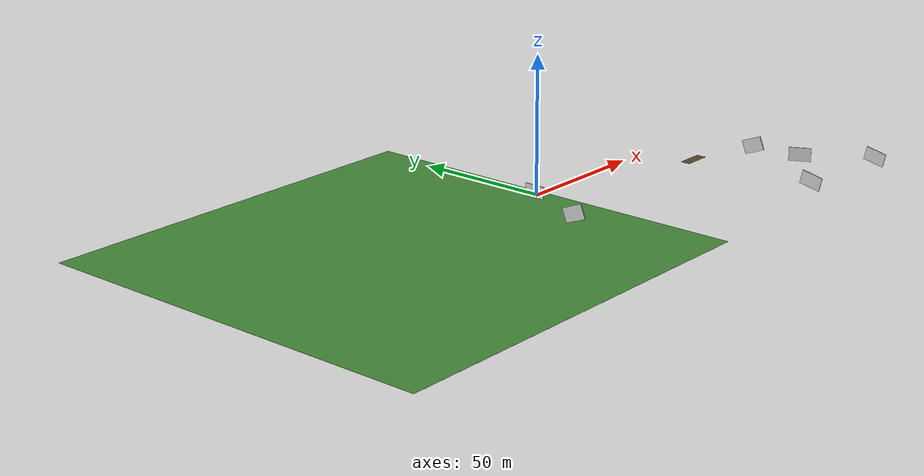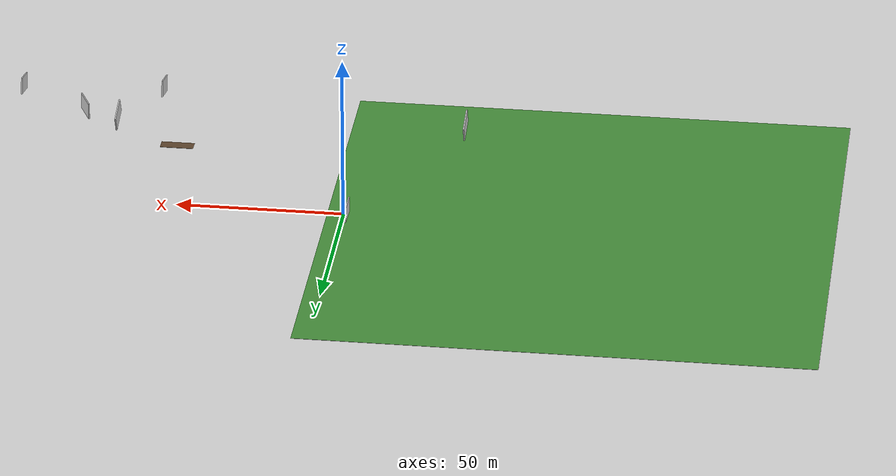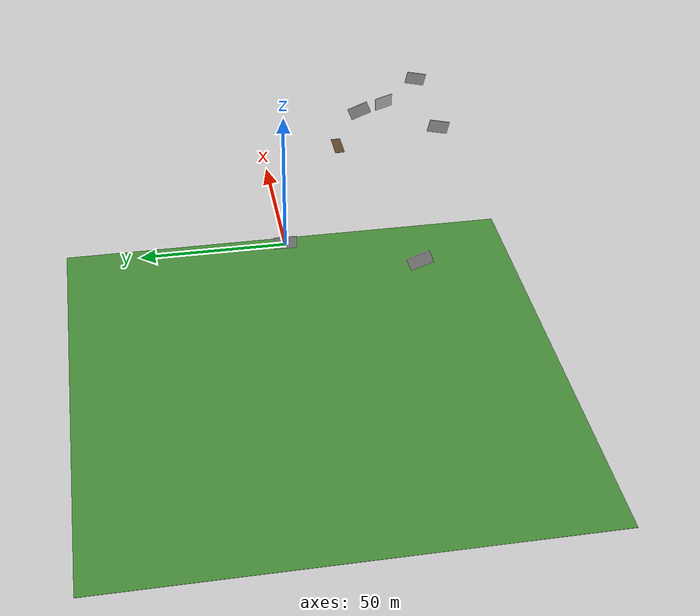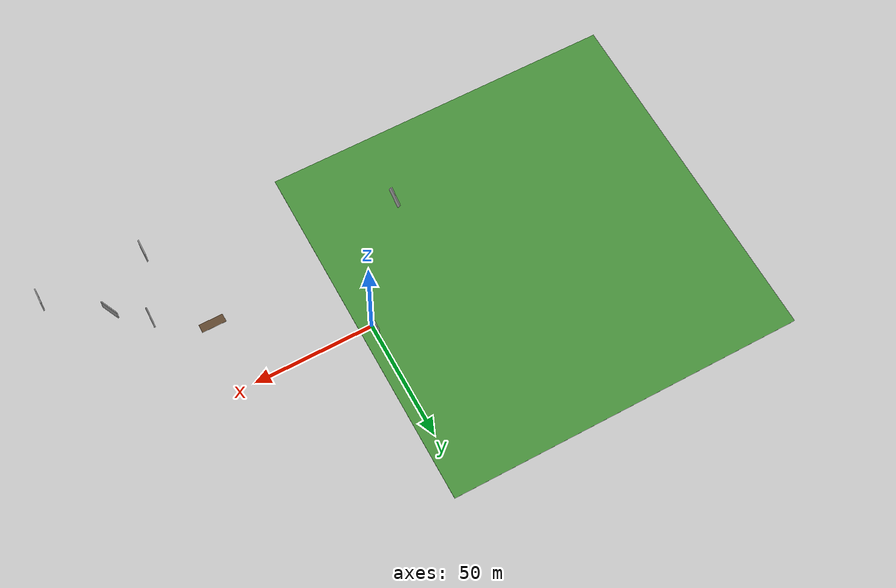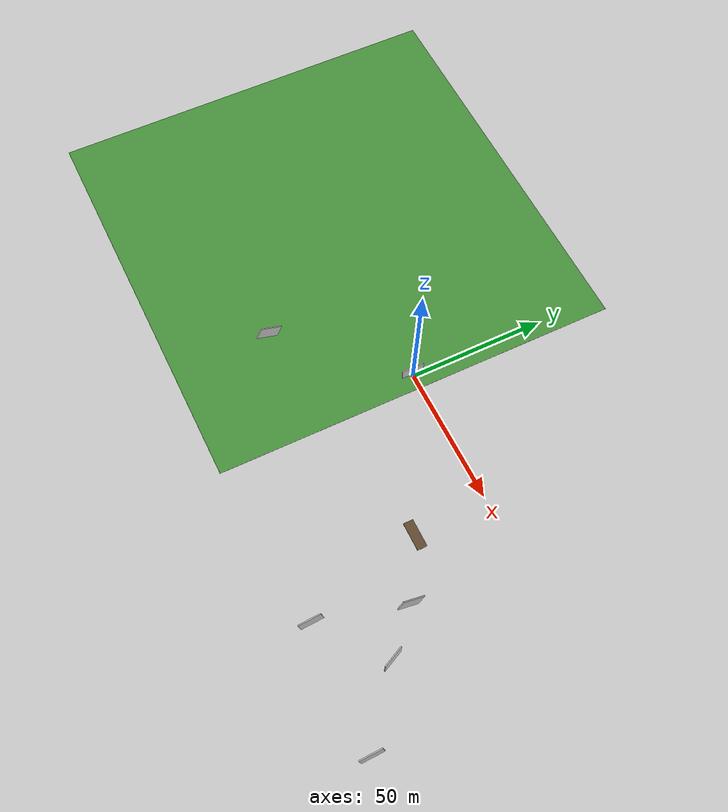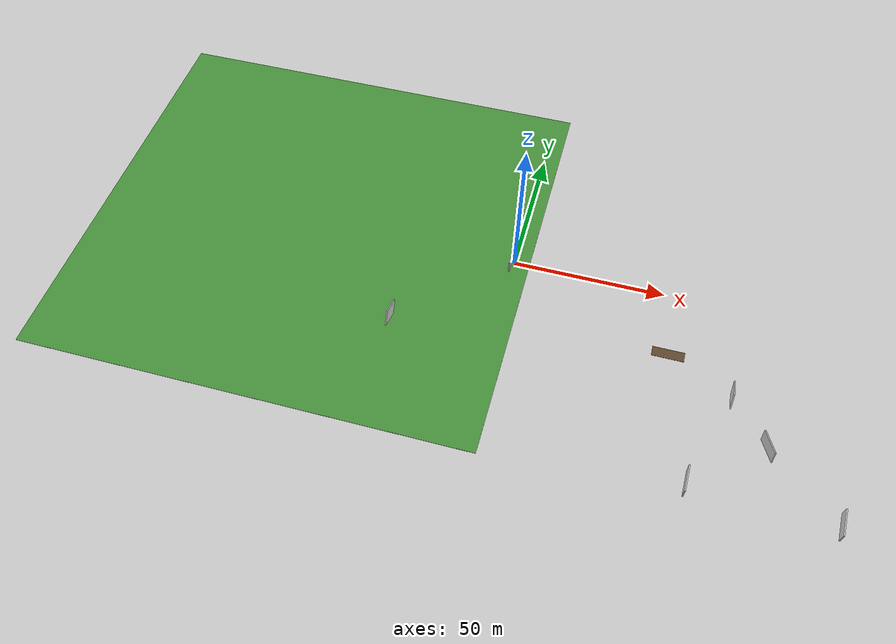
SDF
<sdf version="1.5">
 <world name="default">
  <physics name="mine_physics" default="true" type="ode">
   <max_step_size>0.0005</max_step_size>
   <real_time_update_rate>1000</real_time_update_rate>
   <real_time_factor>0.5</real_time_factor>
   <ode>
    <solver>
     <type>quick</type>
     <iters>100</iters>
     <sor>1.3</sor>
     <use_dynamic_moi_rescaling>true</use_dynamic_moi_rescaling>
    </solver>
    <constraints>
     <cfm>0.0</cfm>
     <erp>0.2</erp>
     <contact_max_correcting_vel>10.0</contact_max_correcting_vel>
     <contact_surface_layer>0.001</contact_surface_layer>
    </constraints>
   </ode>
  </physics>
  <gravity>0 0 -9.81</gravity>
  <scene><shadows>0</shadows></scene>
  <include><uri>model://sun_2</uri></include>
  <include><static>true</static><pose>-70 0 -0.6 0 0 0</pose><uri>model://grass_plane</uri></include>
  <include>
   <static>true</static>
   <pose>-1.1 0.18 -1 0 0 -1.586</pose>
   <name>w1</name>
   <uri>model://smaze_wall</uri>
  </include>
  <include>
   <static>true</static>
   <pose>-31.463 -41.132 8.711 0 -0.3784 -1.586</pose>
   <name>w2</name>
   <uri>model://smaze_wall</uri>
  </include>
  <include>
   <static>true</static>
   <pose>74.0 -40.724 5.897 0 -0.3784 -1.586</pose>
   <name>w3</name>
   <uri>model://smaze_wall</uri>
  </include>
  <include>
   <static>true</static>
   <pose>64.79 -69.038 1.147 0 0.2157 -1.586</pose>
   <name>w4</name>
   <uri>model://smaze_wall</uri>
  </include>
  <include>
   <static>true</static>
   <pose>108.515 -69.67 -0.8383 0 0.2157 -1.586</pose>
   <name>w5</name>
   <uri>model://smaze_wall</uri>
  </include>
  <include>
   <static>true</static>
   <pose>86.213 -52.06 1.763 0 0.0 -1.1254</pose>
   <name>w6</name>
   <uri>model://smaze_wall</uri>
  </include>
  <model name="bump">
   <static>true</static>
   <pose>54.0 -27.8 5.30 0 0 1.57</pose>
   <link name="link">
    <collision name="collision">
     <geometry><box><size>3.5 10 0.1</size></box></geometry>
     <surface><friction><ode><mu>1.5</mu><mu2>1.5</mu2></ode></friction></surface>
    </collision>
    <visual name="visual">
     <geometry><box><size>3.5 10 0.1</size></box></geometry>
     <material><ambient>0.4 0.3 0.2 1</ambient><diffuse>0.4 0.3 0.2 1</diffuse></material>
    </visual>
   </link>
  </model>
 </world>
</sdf>

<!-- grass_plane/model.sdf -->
<sdf version="1.5">
  <model name="grass_plane">
    <static>true</static>
    <link name="link">
      <collision name="collision">
        <geometry>
          <box>
            <size>150 150 .1</size>
          </box>
        </geometry>
        <!-- Explicit friction (reproduces the previous implicit ODE default). -->
        <surface>
          <friction>
            <ode>
              <mu>1.0</mu>
              <mu2>1.0</mu2>
            </ode>
          </friction>
        </surface>
      </collision>
      <visual name="visual">
        <cast_shadows>false</cast_shadows>
        <geometry>
          <box>
            <size>150 150 .1</size>
          </box>
        </geometry>
        <material>
          <script>
            <uri>model://grass_plane/materials/scripts</uri>
            <uri>model://grass_plane/materials/textures</uri>
            <name>vrc/grass_plane</name>
          </script>
        </material>
      </visual>
    </link>
  </model>
</sdf>

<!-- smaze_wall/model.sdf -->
<sdf version="1.5">
  <model name="smaze_wall">
    <static>true</static>
    <link name="link">
      <pose>0 0 2.5 0 0 0</pose>
      <collision name="collision">
        <geometry>
          <box>
            <size>8 0.4 5</size>
          </box>
        </geometry>
        <surface>
          <friction>
            <ode>
              <mu>100.0</mu>
              <mu2>100.0</mu2>
            </ode>
          </friction>
        </surface>
      </collision>
      <visual name="visual">
        <geometry>
          <box>
            <size>8 0.4 5</size>
          </box>
        </geometry>
        <material>
          <script>
            <uri>model://smaze_wall/materials/scripts</uri>
            <uri>model://smaze_wall/materials/textures</uri>
            <name>vrc/smaze_wall</name>
          </script>
        </material>
      </visual>
    </link>
  </model>
</sdf>
